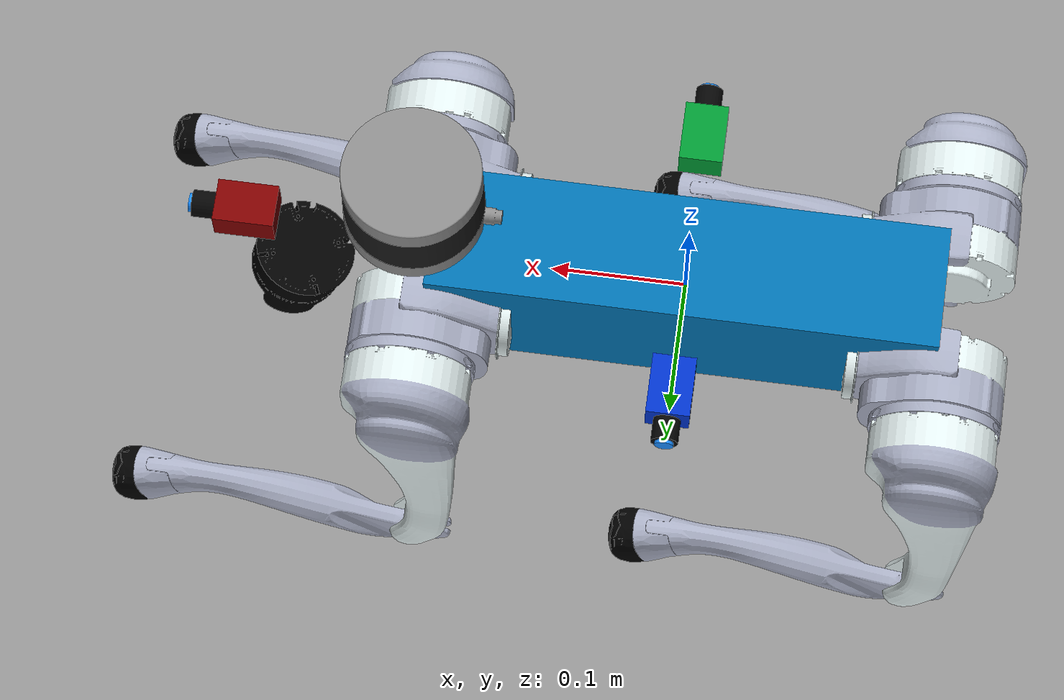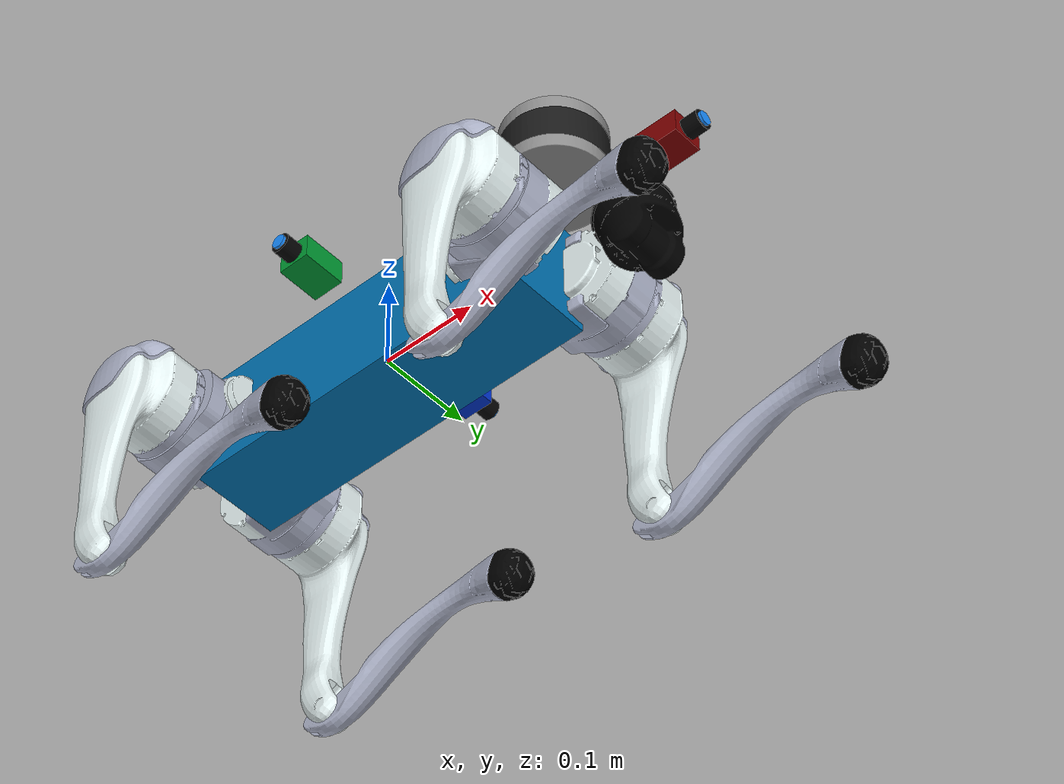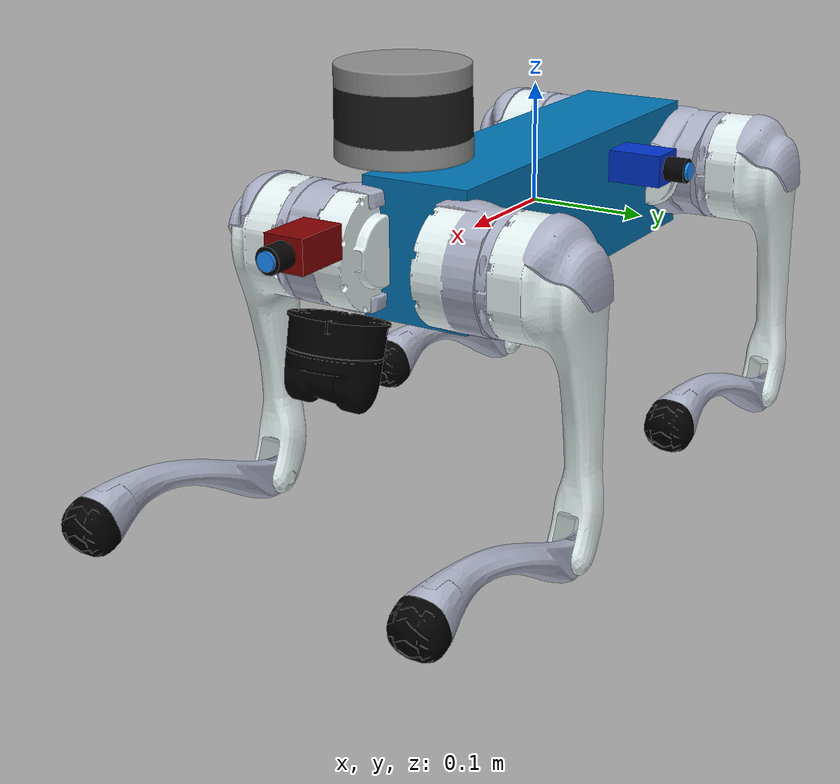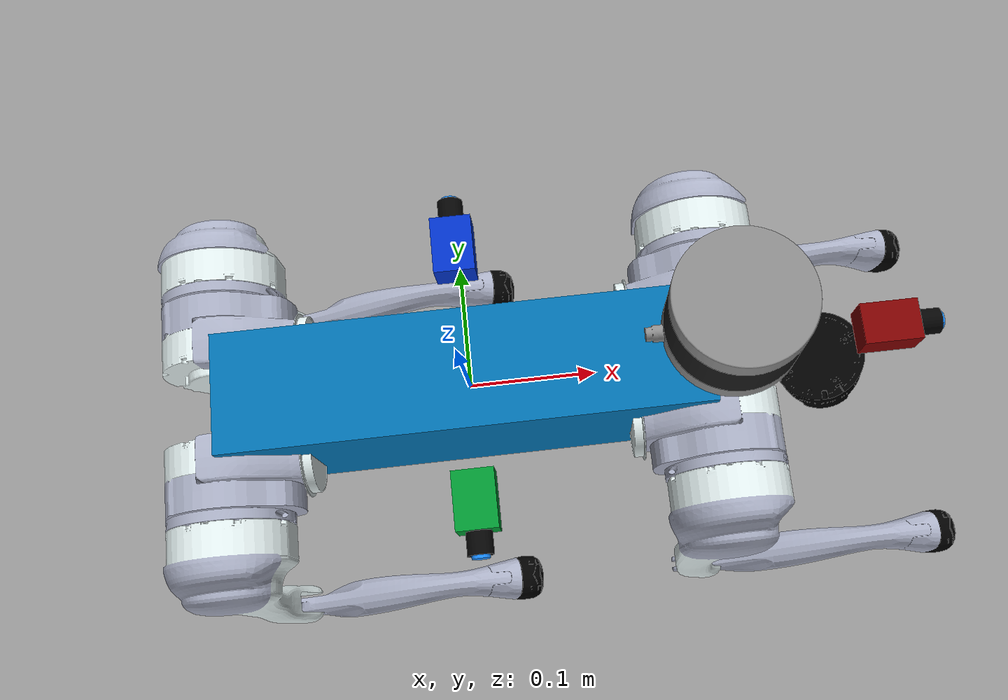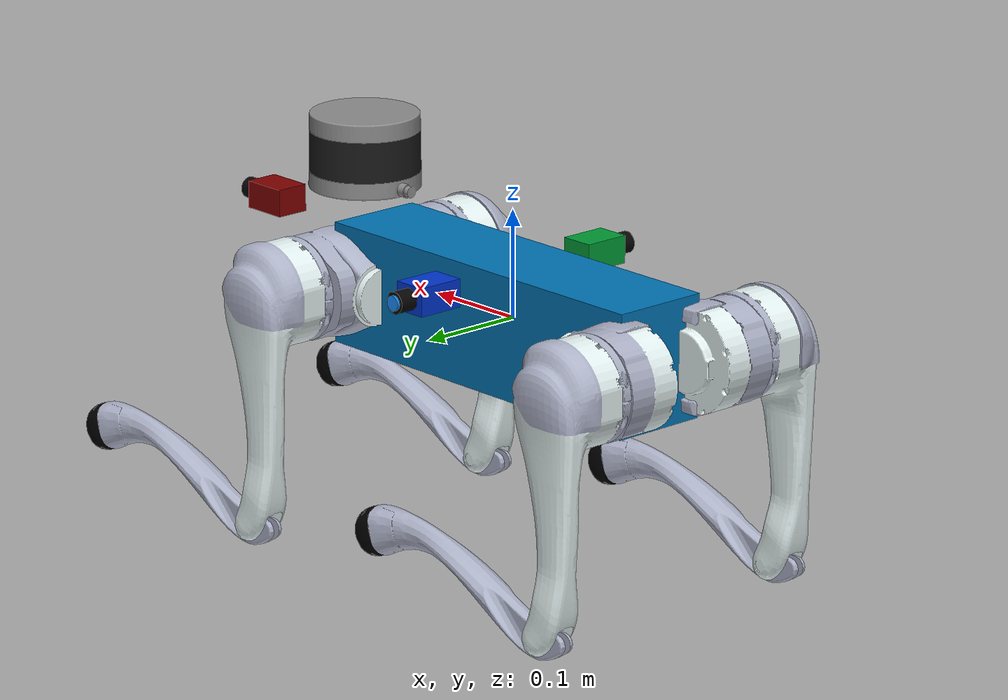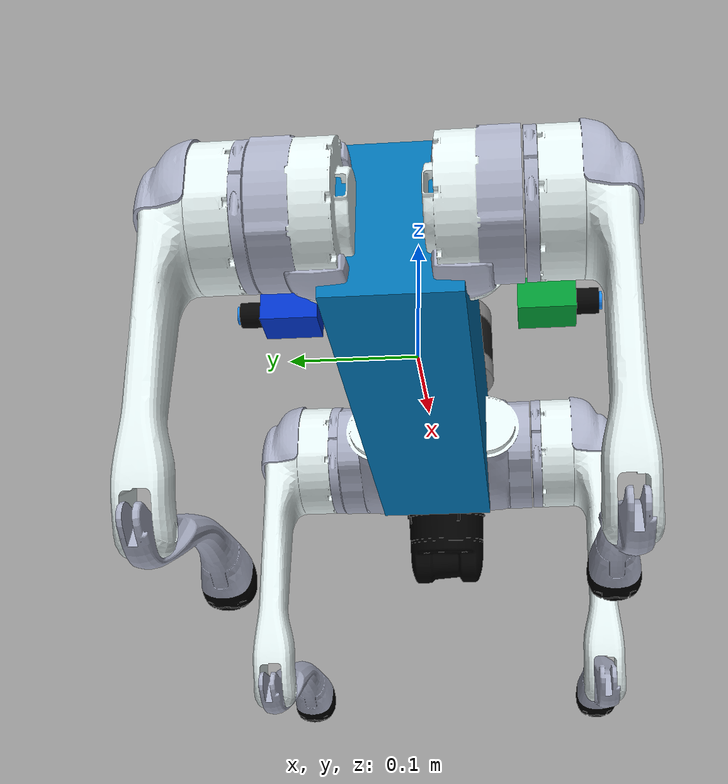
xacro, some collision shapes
<?xml version="1.0"?>

<robot name="go2"
    xmlns:xacro="http://www.ros.org/wiki/xacro">

    <!-- DEBUG=true 时会把 base_link 固定到 world，适合检查 URDF 姿态、传感器方向和碰撞体。 -->
    <xacro:arg name="DEBUG" default="false"/>

    <!-- 基础参数、材质、腿部宏、Gazebo 插件和传感器宏分文件维护，主文件只负责装配。 -->
    <xacro:include filename="$(find unitree_go2_description)/urdf/const.xacro"/>
    <xacro:include filename="$(find unitree_go2_description)/urdf/materials.xacro"/>
    <xacro:include filename="$(find unitree_go2_description)/urdf/leg.xacro"/>
    <xacro:include filename="$(find unitree_go2_description)/urdf/unitree_go2_gazebo.xacro"/>
    <xacro:include filename="$(find unitree_go2_description)/urdf/velodyne.xacro"/>
    <xacro:include filename="$(find unitree_go2_description)/urdf/lidar_4D_lidar.xacro"/>

    <!--
        旧版转子相关注释保留为提示：如果未来加入电机转子模型，需要考虑非固定关节和减速比。
        当前模型把驱动简化到关节 effort 接口，由 Gazebo/ros2_control 直接施加力矩。
    -->

    <!-- 调试模式会把机器人挂在世界坐标下，不参与自由落体；正常仿真应保持 false。 -->
    <xacro:if value="$(arg DEBUG)">
        <link name="world"/>
        <joint name="base_static_joint" type="fixed">
            <origin rpy="0 0 0" xyz="0 0 0"/>
            <parent link="world"/>
            <child link="base_link"/>
        </joint>
    </xacro:if>

    <!-- base_link 是 ROS 生态中常用的机器人根坐标系，这里用极小盒子占位。 -->
    <link name="base_link">
        <visual>
            <origin rpy="0 0 0" xyz="0 0 0"/>
            <geometry>
                <box size="0.001 0.001 0.001"/>
            </geometry>
        </visual>
    </link>

    <!-- trunk 是真实机身几何所在 link，base_link 固定连接到 trunk，方便导航栈使用 base_link。 -->
    <joint name="floating_base" type="fixed">
        <origin rpy="0 0 0" xyz="0 0 0"/>
        <parent link="base_link"/>
        <child link="trunk"/>
    </joint>

    <!-- 机身主体：视觉使用 trunk.dae，碰撞体使用简化盒子，惯量来自 const.xacro。 -->
    <link name="trunk">
        <visual>
            <origin rpy="0 0 0" xyz="0 0 0"/>
            <geometry>
                <mesh filename="file://$(find unitree_go2_description)/meshes/trunk.dae" scale="1 1 1"/>
            </geometry>
        </visual>
        <collision>
            <origin rpy="0 0 0" xyz="0 0 0"/>
            <geometry>
                <box size="${trunk_length} ${trunk_width} ${trunk_height}"/>
            </geometry>
        </collision>
        <inertial>
            <origin rpy="0 0 0" xyz="${trunk_com_x} ${trunk_com_y} ${trunk_com_z}"/>
            <mass value="${trunk_mass}"/>
            <inertia ixx="${trunk_ixx}" ixy="${trunk_ixy}" ixz="${trunk_ixz}" iyy="${trunk_iyy}" iyz="${trunk_iyz}" izz="${trunk_izz}"/>
        </inertial>
    </link>

    <!-- IMU 固定在 trunk 原点，Gazebo 传感器插件在 unitree_go2_gazebo.xacro 中绑定到 imu_link。 -->
    <joint name="imu_joint" type="fixed">
        <parent link="trunk"/>
        <child link="imu_link"/>
        <origin rpy="0 0 0" xyz="0 0 0"/>
    </joint>

    <link name="imu_link">
        <inertial>
            <mass value="0.001"/>
            <origin rpy="0 0 0" xyz="0 0 0"/>
            <inertia ixx="0.0001" ixy="0" ixz="0" iyy="0.0001" iyz="0" izz="0.0001"/>
        </inertial>
        <visual>
            <origin rpy="0 0 0" xyz="0 0 0"/>
            <geometry>
                <box size="0.001 0.001 0.001"/>
            </geometry>
        </visual>
        <collision>
            <origin rpy="0 0 0" xyz="0 0 0"/>
            <geometry>
                <box size=".001 .001 .001"/>
            </geometry>
        </collision>
    </link>

    <!-- 相机 link：极小球体仅用于 RViz 可见占位，Gazebo 中的 RGB camera 传感器绑定到对应 link。 -->
    <xacro:macro name="rgb_camera_mount" params="link_name joint_name xyz rpy color">
        <link name="${link_name}">
            <inertial>
                <mass value="0.001"/>
                <origin rpy="0 0 0" xyz="0 0 0"/>
                <inertia ixx="0.0001" ixy="0" ixz="0" iyy="0.0001" iyz="0" izz="0.0001"/>
            </inertial>
            <visual>
                <origin rpy="0 0 0" xyz="0 0 0"/>
                <geometry>
                    <box size="0.045 0.032 0.026"/>
                </geometry>
                <material name="${link_name}_body">
                    <color rgba="${color}" />
                </material>
            </visual>
            <visual>
                <origin rpy="0 1.57079632679 0" xyz="0.031 0 0"/>
                <geometry>
                    <cylinder radius="0.010" length="0.018"/>
                </geometry>
                <material name="${link_name}_lens">
                    <color rgba="0.02 0.02 0.02 1"/>
                </material>
            </visual>
            <visual>
                <origin rpy="0 1.57079632679 0" xyz="0.041 0 0"/>
                <geometry>
                    <cylinder radius="0.007" length="0.003"/>
                </geometry>
                <material name="${link_name}_glass">
                    <color rgba="0.1 0.55 1.0 1"/>
                </material>
            </visual>
            <collision>
                <origin rpy="0 0 0" xyz="0 0 0"/>
                <geometry>
                    <box size="0.055 0.034 0.028"/>
                </geometry>
            </collision>
        </link>
        <joint name="${joint_name}" type="fixed">
            <parent link="trunk"/>
            <child link="${link_name}"/>
            <origin rpy="${rpy}" xyz="${xyz}"/>
        </joint>
    </xacro:macro>

    <!-- 前/左/右三路 RGB 相机。左相机朝 +Y，右相机朝 -Y。 -->
    <xacro:rgb_camera_mount link_name="camera_link" joint_name="camera_joint" xyz="0.326 0 0.043" rpy="0 0 0" color="0.5 0 0 1"/>
    <xacro:rgb_camera_mount link_name="left_camera_link" joint_name="left_camera_joint" xyz="0.0 0.10 0.043" rpy="0 0 1.57079632679" color="0 0.2 0.8 1"/>
    <xacro:rgb_camera_mount link_name="right_camera_link" joint_name="right_camera_joint" xyz="0.0 -0.10 0.043" rpy="0 0 -1.57079632679" color="0 0.6 0.2 1"/>

    <!--
        四条腿由同一个 leg 宏生成。
        rf/lf 为前腿，rh/lh 为后腿；mirror 控制左右符号，front_hind 控制前后符号。
        name 前缀需要与 CHAMP 的 joints.yaml 和 links.yaml 保持一致。
    -->
    <xacro:leg name="rf" mirror="-1" mirror_dae= "False" front_hind="1" front_hind_dae="True" />
    <xacro:leg name="lf" mirror="1" mirror_dae="True" front_hind="1" front_hind_dae="True" />
    <xacro:leg name="rh" mirror="-1" mirror_dae="False" front_hind="-1" front_hind_dae="False" />
    <xacro:leg name="lh" mirror="1" mirror_dae="True" front_hind="-1" front_hind_dae="False" />

</robot>

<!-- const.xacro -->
<robot xmlns:xacro="http://www.ros.org/wiki/xacro">

    <!--
        Go2 模型常量。
        本文件集中定义尺寸、运动学、关节限位和惯量参数，其他 xacro 文件通过 include 复用。
        单位约定：长度为米，质量为千克，角度为弧度，惯量为 kg*m^2。
    -->

    <!-- 通用数学常量和极小质量。stick_mass 可用于占位杆件，避免 Gazebo 遇到零质量 link。 -->
    <xacro:property name="PI" value="3.1415926535897931"/>
    <xacro:property name="stick_mass" value="0.00001"/>

    <!-- 简化碰撞几何尺寸。视觉 mesh 很精细，碰撞体使用 box/cylinder/sphere 可显著提高仿真效率。 -->
    <xacro:property name="trunk_width" value="0.0935"/>
    <xacro:property name="trunk_length" value="0.3762"/>
    <xacro:property name="trunk_height" value="0.114"/>
    <xacro:property name="hip_radius" value="0.046"/>
    <xacro:property name="hip_length" value="0.04"/>
    <xacro:property name="thigh_shoulder_radius" value="0.041"/>
    <xacro:property name="thigh_shoulder_length" value="0.032"/>
    <xacro:property name="thigh_width" value="0.0245"/>
    <xacro:property name="thigh_height" value="0.034"/>
    <xacro:property name="calf_width" value="0.016"/>
    <xacro:property name="calf_height" value="0.016"/>
    <xacro:property name="foot_radius" value="0.02"/>
    <xacro:property name="stick_radius" value="0.01"/>
    <xacro:property name="stick_length" value="0.2"/>

    <!-- 运动学长度。thigh/calf 长度直接影响足端可达空间和 CHAMP 步态高度。 -->
    <xacro:property name="thigh_offset" value="0.0955"/>
    <xacro:property name="thigh_length" value="0.213"/>
    <xacro:property name="calf_length" value="0.213"/>

    <!-- 四条腿相对 trunk 中心的安装偏移。x 为前后，y 为左右。 -->
    <xacro:property name="leg_offset_x" value="0.1934"/>
    <xacro:property name="leg_offset_y" value="0.0465"/>
    <xacro:property name="hip_offset" value="0.0955"/>

    <!-- 左前腿 link 的参考偏移，其他腿通过 mirror/front_hind 参数镜像得到。 -->
    <xacro:property name="hip_offset_x" value="0.1934"/>
    <xacro:property name="hip_offset_y" value="0.0465"/>
    <xacro:property name="hip_offset_z" value="0.0"/>

    <xacro:property name="thigh_offset_x" value="0"/>
    <xacro:property name="thigh_offset_y" value="0.0955"/>
    <xacro:property name="thigh_offset_z" value="0.0"/>

    <xacro:property name="calf_offset_x" value="0.0"/>
    <xacro:property name="calf_offset_y" value="0.0"/>
    <xacro:property name="calf_offset_z" value="-0.213"/>

    <!--
        关节阻尼、摩擦、位置限位、速度限位和力矩限位。
        leg.xacro 会根据左右镜像关系翻转部分髋关节限位。
    -->
    <xacro:property name="damping" value="0.01"/>
    <xacro:property name="friction" value="0.2"/>
    <xacro:property name="hip_position_max" value="1.0472"/>
    <xacro:property name="hip_position_min" value="-1.0472"/>
    <xacro:property name="hip_velocity_max" value="30.1"/>
    <xacro:property name="hip_torque_max" value="23.7"/>
    <xacro:property name="thigh_position_max" value="3.4907"/>
    <xacro:property name="thigh_position_min" value="-1.5708"/>
    <xacro:property name="thigh_velocity_max" value="30.1"/>
    <xacro:property name="thigh_torque_max" value="23.7"/>
    <xacro:property name="calf_position_max" value="-0.83776"/>
    <xacro:property name="calf_position_min" value="-2.7227"/>
    <xacro:property name="calf_velocity_max" value="20.06"/>
    <xacro:property name="calf_torque_max" value="35.55"/>

    <!-- Gazebo/ros2_control 启动时使用的静态站立关节角，和 gait.yaml 的 nominal_height=0.225 匹配。 -->
    <xacro:property name="stand_hip_joint" value="0.0"/>
    <xacro:property name="stand_upper_leg_joint" value="1.0143535"/>
    <xacro:property name="stand_lower_leg_joint" value="-2.028707"/>

    <!-- 动力学惯量参数。COM 为各 link 局部坐标系下的质心，惯量矩阵用于 Gazebo 物理仿真。 -->
    <!-- trunk：机身主体，质量最大，对整体姿态稳定性影响最明显。 -->
    <xacro:property name="trunk_mass" value="6.921"/>
    <xacro:property name="trunk_com_x" value="0.021112"/>
    <xacro:property name="trunk_com_y" value="0.00"/>
    <xacro:property name="trunk_com_z" value="-0.005366"/>
    <xacro:property name="trunk_ixx" value="0.02448"/>
    <xacro:property name="trunk_ixy" value="0.00012166"/>
    <xacro:property name="trunk_ixz" value="0.0014849"/>
    <xacro:property name="trunk_iyy" value="0.098077"/>
    <xacro:property name="trunk_iyz" value="-3.12E-05"/>
    <xacro:property name="trunk_izz" value="0.107"/>

    <!-- hip：髋部横摆/侧摆机构，其他腿通过符号翻转复用左前腿惯量。 -->
    <xacro:property name="hip_mass" value="0.678"/>
    <xacro:property name="hip_com_x" value="-0.0054"/>
    <xacro:property name="hip_com_y" value="0.00194"/>
    <xacro:property name="hip_com_z" value="-0.000105"/>
    <xacro:property name="hip_ixx" value="0.00048"/>
    <xacro:property name="hip_ixy" value="-3.01E-06"/>
    <xacro:property name="hip_ixz" value="1.11E-06"/>
    <xacro:property name="hip_iyy" value="0.000884"/>
    <xacro:property name="hip_iyz" value="-1.42E-06"/>
    <xacro:property name="hip_izz" value="0.000596"/>

    <!-- thigh：上腿 link，质心和惯量会按左右镜像修正 y 方向符号。 -->
    <xacro:property name="thigh_mass" value="1.152"/>
    <xacro:property name="thigh_com_x" value="-0.00374"/>
    <xacro:property name="thigh_com_y" value="-0.0223"/>
    <xacro:property name="thigh_com_z" value="-0.0327"/>
    <xacro:property name="thigh_ixx" value="0.00584"/>
    <xacro:property name="thigh_ixy" value="8.72E-05"/>
    <xacro:property name="thigh_ixz" value="-0.000289"/>
    <xacro:property name="thigh_iyy" value="0.0058"/>
    <xacro:property name="thigh_iyz" value="0.000808"/>
    <xacro:property name="thigh_izz" value="0.00103"/>

    <!-- calf：小腿 link，质量较轻但长度较长，惯量参数会影响摆腿响应。 -->
    <xacro:property name="calf_mass" value="0.154"/>
    <xacro:property name="calf_com_x" value="0.00548"/>
    <xacro:property name="calf_com_y" value="-0.000975"/>
    <xacro:property name="calf_com_z" value="-0.115"/>
    <xacro:property name="calf_ixx" value="0.00108"/>
    <xacro:property name="calf_ixy" value="3.4E-07"/>
    <xacro:property name="calf_ixz" value="1.72E-05"/>
    <xacro:property name="calf_iyy" value="0.0011"/>
    <xacro:property name="calf_iyz" value="8.28E-06"/>
    <xacro:property name="calf_izz" value="3.29E-05"/>

    <!-- foot：足端简化为球体，惯量在 leg.xacro 中按实心球公式计算。 -->
    <xacro:property name="foot_mass" value="0.06"/>

</robot>

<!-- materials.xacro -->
<robot>

    <!--
        统一材质表。
        这些材质可以被各个 link 的 visual 引用，避免在多个 xacro 中重复写 RGBA。
        rgba 的第四个值是透明度，1.0 为不透明，0.0 为完全透明。
    -->
    <material name="black">
        <color rgba="0.0 0.0 0.0 1.0"/>
    </material>

    <!-- 基础调试色：用于临时给 link 或传感器外壳着色。 -->
    <material name="blue">
        <color rgba="0.0 0.0 0.8 1.0"/>
    </material>

    <material name="green">
        <color rgba="0.0 0.8 0.0 1.0"/>
    </material>

    <!-- grey 当前 alpha 为 0，视觉上透明，适合隐藏占位几何。 -->
    <material name="grey">
        <color rgba="0.2 0.2 0.2 0.0"/>
    </material>

    <!-- 下列颜色使用 0 到 255 的常见 RGB 值换算到 URDF 所需的 0 到 1。 -->
    <material name="silver">
        <color rgba="${233/255} ${233/255} ${216/255} 1.0"/>
    </material>

    <material name="orange">
        <color rgba="${255/255} ${108/255} ${10/255} 1.0"/>
    </material>

    <material name="brown">
        <color rgba="${222/255} ${207/255} ${195/255} 1.0"/>
    </material>

    <material name="red">
        <color rgba="0.8 0.0 0.0 1.0"/>
    </material>

    <material name="white">
        <color rgba="1.0 1.0 1.0 1.0"/>
    </material>

</robot>

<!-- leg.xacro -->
<robot xmlns:xacro="http://www.ros.org/wiki/xacro">

    <xacro:macro name="leg" params="name mirror mirror_dae front_hind front_hind_dae">

        <!-- 髋关节连接 trunk 和 hip link，origin 根据前/后、左/右四种组合放置。 -->
        <joint name="${name}_hip_joint" type="revolute">
            <!-- 右前腿：x 为前向正，y 为右侧负。 -->
            <xacro:if value="${(mirror_dae == False) and (front_hind_dae == True)}">
                <origin rpy="0 0 0" xyz="${leg_offset_x} ${-leg_offset_y} 0"/>
            </xacro:if>
            <!-- 左前腿：x 为前向正，y 为左侧正。 -->
            <xacro:if value="${(mirror_dae == True) and (front_hind_dae == True)}">
                <origin rpy="0 0 0" xyz="${leg_offset_x} ${leg_offset_y} 0"/>
            </xacro:if>
            <!-- 右后腿：x 为后向负，y 为右侧负。 -->
            <xacro:if value="${(mirror_dae == False) and (front_hind_dae == False)}">
                <origin rpy="0 0 0" xyz="${-leg_offset_x} ${-leg_offset_y} 0"/>
            </xacro:if>
            <!-- 左后腿：x 为后向负，y 为左侧正。 -->
            <xacro:if value="${(mirror_dae == True) and (front_hind_dae == False)}">
                <origin rpy="0 0 0" xyz="${-leg_offset_x} ${leg_offset_y} 0"/>
            </xacro:if>
            <parent link="trunk"/>
            <child link="${name}_hip_link"/>
            <!-- 髋关节绕 x 轴转动，控制腿向外/向内摆动。 -->
            <axis xyz="1 0 0"/>
            <dynamics damping="${damping}" friction="${friction}"/>
            <!-- 左右腿坐标镜像后，髋关节正负限位也要翻转，避免可动范围方向相反。 -->
            <xacro:if value="${(mirror_dae == True)}">
                <limit effort="${hip_torque_max}" velocity="${hip_velocity_max}" lower="${hip_position_min}" upper="${hip_position_max}"/>
            </xacro:if>
            <xacro:if value="${(mirror_dae == False)}">
                <limit effort="${hip_torque_max}" velocity="${hip_velocity_max}" lower="${-hip_position_max}" upper="${-hip_position_min}"/>
            </xacro:if>
        </joint>

        <!-- hip link：视觉使用真实 mesh，碰撞使用圆柱体，惯量使用 const.xacro 中的实测/拟合参数。 -->
        <link name="${name}_hip_link">
            <visual>
                <!-- 同一个 hip mesh 通过 RPY 旋转复用到四条腿。 -->
                <xacro:if value="${(mirror_dae == True) and (front_hind_dae == True)}">
                    <origin rpy="0 0 0" xyz="0 0 0"/>
                </xacro:if>
                <xacro:if value="${(mirror_dae == False) and (front_hind_dae == True)}">
                    <origin rpy="${PI} 0 0" xyz="0 0 0"/>
                </xacro:if>
                <xacro:if value="${(mirror_dae == True) and (front_hind_dae == False)}">
                    <origin rpy="0 ${PI} 0" xyz="0 0 0"/>
                </xacro:if>
                <xacro:if value="${(mirror_dae == False) and (front_hind_dae == False)}">
                    <origin rpy="${PI} ${PI} 0" xyz="0 0 0"/>
                </xacro:if>
                <geometry>
                    <mesh filename="file://$(find unitree_go2_description)/meshes/hip.dae" scale="1 1 1"/>
                </geometry>
            </visual>
            <collision>
                <!-- 圆柱碰撞体沿髋部轴向放置，比 mesh 碰撞更稳定。 -->
                <origin rpy="${PI/2.0} 0 0" xyz="0 ${hip_offset*mirror} 0"/>
                <geometry>
                    <cylinder length="${hip_length}" radius="${hip_radius}"/>
                </geometry>
            </collision>
            <inertial>
                <origin rpy="0 0 0" xyz="${hip_com_x*front_hind} ${hip_com_y*mirror} ${hip_com_z}"/>
                <mass value="${hip_mass}"/>
                <inertia
                    ixx="${hip_ixx}" ixy="${hip_ixy*mirror*front_hind}" ixz="${hip_ixz*front_hind}"
                    iyy="${hip_iyy}" iyz="${hip_iyz*mirror}"
                    izz="${hip_izz}"/>
            </inertial>
        </link>

        <!-- 上腿关节连接 hip link 和 upper_leg link，绕局部 y 轴完成前后摆动。 -->
        <joint name="${name}_upper_leg_joint" type="revolute">
            <origin rpy="0 0 0" xyz="0 ${thigh_offset*mirror} 0"/>
            <parent link="${name}_hip_link"/>
            <child link="${name}_upper_leg_link"/>
            <axis xyz="0 1 0"/>
            <dynamics damping="${damping}" friction="${friction}"/>
            <limit effort="${thigh_torque_max}" velocity="${thigh_velocity_max}" lower="${thigh_position_min}" upper="${thigh_position_max}"/>
        </joint>

        <!-- upper_leg link：左右两侧使用不同 thigh mesh，碰撞体简化成长方体。 -->
        <link name="${name}_upper_leg_link">
            <visual>
                <origin rpy="0 0 0" xyz="0 0 0"/>
                <geometry>
                    <xacro:if value="${mirror_dae == True}">
                        <mesh filename="file://$(find unitree_go2_description)/meshes/thigh.dae" scale="1 1 1"/>
                    </xacro:if>
                    <xacro:if value="${mirror_dae == False}">
                        <mesh filename="file://$(find unitree_go2_description)/meshes/thigh_mirror.dae" scale="1 1 1"/>
                    </xacro:if>
                </geometry>
            </visual>
            <collision>
                <!-- box 的长边沿上腿方向，中心放在 thigh_length 的一半处。 -->
                <origin rpy="0 ${PI/2.0} 0" xyz="0 0 ${-thigh_length/2.0}"/>
                <geometry>
                    <box size="${thigh_length} ${thigh_width} ${thigh_height}"/>
                </geometry>
            </collision>
            <inertial>
                <origin rpy="0 0 0" xyz="${thigh_com_x} ${thigh_com_y*mirror} ${thigh_com_z}"/>
                <mass value="${thigh_mass}"/>
                <inertia
                    ixx="${thigh_ixx}" ixy="${thigh_ixy*mirror}" ixz="${thigh_ixz}"
                    iyy="${thigh_iyy}" iyz="${thigh_iyz*mirror}"
                    izz="${thigh_izz}"/>
            </inertial>
        </link>

        <!-- 小腿关节位于上腿末端，绕局部 y 轴弯曲。 -->
        <joint name="${name}_lower_leg_joint" type="revolute">
            <origin rpy="0 0 0" xyz="0 0 ${-thigh_length}"/>
            <parent link="${name}_upper_leg_link"/>
            <child link="${name}_lower_leg_link"/>
            <axis xyz="0 1 0"/>
            <dynamics damping="${damping}" friction="${friction}"/>
            <limit effort="${calf_torque_max}" velocity="${calf_velocity_max}" lower="${calf_position_min}" upper="${calf_position_max}"/>
        </joint>

        <!-- lower_leg link：视觉为 calf mesh，碰撞体为长方体，计算量小且不易卡住地面。 -->
        <link name="${name}_lower_leg_link">
            <visual>
                <origin rpy="0 0 0" xyz="0 0 0"/>
                <geometry>
                    <mesh filename="file://$(find unitree_go2_description)/meshes/calf.dae" scale="1 1 1"/>
                </geometry>
            </visual>
            <collision>
                <!-- 小腿碰撞盒中心位于 calf_length 的一半处。 -->
                <origin rpy="0 ${PI/2.0} 0" xyz="0 0 ${-calf_length/2.0}"/>
                <geometry>
                    <box size="${calf_length} ${calf_width} ${calf_height}"/>
                </geometry>
            </collision>
            <inertial>
                <origin rpy="0 0 0" xyz="${calf_com_x} ${calf_com_y} ${calf_com_z}"/>
                <mass value="${calf_mass}"/>
                <inertia
                    ixx="${calf_ixx}" ixy="${calf_ixy}" ixz="${calf_ixz}"
                    iyy="${calf_iyy}" iyz="${calf_iyz}"
                    izz="${calf_izz}"/>
            </inertial>
        </link>

        <!-- 足端固定在小腿末端，CHAMP 使用该 link 作为足端接触/运动学参考。 -->
        <joint name="${name}_foot_joint" type="fixed">
            <origin rpy="0 0 0" xyz="0 0 ${-(calf_length)}"/>
            <parent link="${name}_lower_leg_link"/>
            <child link="${name}_foot_link"/>
        </joint>

        <!-- 足端简化为球体，视觉球略小于碰撞球，避免渲染时看起来过大。 -->
        <link name="${name}_foot_link">
            <visual>
                <origin rpy="0 0 0" xyz="0 0 0"/>
                <geometry>
                    <sphere radius="${foot_radius-0.01}"/>
                </geometry>
            </visual>
            <collision>
                <origin rpy="0 0 0" xyz="0 0 0"/>
                <geometry>
                    <sphere radius="${foot_radius}"/>
                </geometry>
            </collision>
            <inertial>
                <mass value="${foot_mass}"/>
                <!-- 实心球惯量公式：I = 2/5*m*r^2。 -->
                <inertia
                    ixx="${(2*foot_mass)/5.0*(foot_radius*foot_radius)}" ixy="0.0" ixz="0.0"
                    iyy="${(2*foot_mass)/5.0*(foot_radius*foot_radius)}" iyz="0.0"
                    izz="${(2*foot_mass)/5.0*(foot_radius*foot_radius)}"/>
            </inertial>
        </link>

        <!--
            ros2_control 硬件接口声明。
            GazeboSimSystem 由 gz_ros2_control 插件实现，三个主动关节暴露 effort 命令接口，
            并反馈 position/velocity 给 joint_trajectory_controller。
        -->
        <ros2_control name="${name}" type="system">
            <hardware>
                <plugin>gz_ros2_control/GazeboSimSystem</plugin>
            </hardware>
            <joint name="${name}_hip_joint">
                <command_interface name="effort"/>
                <state_interface name="position">
                    <param name="initial_value">${stand_hip_joint}</param>
                </state_interface>
                <state_interface name="velocity"/>
            </joint>

            <joint name="${name}_upper_leg_joint">
                <command_interface name="effort"/>
                <state_interface name="position">
                    <param name="initial_value">${stand_upper_leg_joint}</param>
                </state_interface>
                <state_interface name="velocity"/>
            </joint>

            <joint name="${name}_lower_leg_joint">
                <command_interface name="effort"/>
                <state_interface name="position">
                    <param name="initial_value">${stand_lower_leg_joint}</param>
                </state_interface>
                <state_interface name="velocity"/>
            </joint>
        </ros2_control>

    </xacro:macro>
</robot>

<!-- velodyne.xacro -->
<robot xmlns:xacro="http://www.ros.org/wiki/xacro">
    <!--
        Velodyne VLP-16 传感器模型。
        该文件定义安装支架、扫描 link 和 Gazebo gpu_lidar 传感器，输出话题为 velodyne_points。
    -->

    <!-- 雷达底座固定在 base_link 前上方。xyz 为相对 base_link 的安装位移。 -->
    <joint name="velodyne_base_mount_joint" type="fixed">
        <origin rpy="0 0 0" xyz="0.2 0 0.08"/>
        <parent link="base_link"/>
        <child link="velodyne_base_link"/>
    </joint>

    <!-- VLP16 底座：使用两个视觉 mesh 还原外观，碰撞体用圆柱近似。 -->
    <link name="velodyne_base_link">
        <inertial>
            <mass value="0.83"/>
            <origin xyz="0 0 0.03585"/>
            <inertia ixx="0.000908059425" ixy="0" ixz="0" iyy="0.000908059425" iyz="0" izz="0.0011049624"/>
        </inertial>
        <visual>
            <geometry>
                <mesh filename="file://$(find unitree_go2_description)/meshes/VLP16_base_1.dae"/>
            </geometry>
        </visual>
        <visual>
            <geometry>
                <mesh filename="file://$(find unitree_go2_description)/meshes/VLP16_base_2.dae"/>
            </geometry>
        </visual>
        <collision>
            <origin rpy="0 0 0" xyz="0 0 0.03585"/>
            <geometry>
                <cylinder length="0.0717" radius="0.0516"/>
            </geometry>
        </collision>
    </link>

    <!-- 扫描 link 位于底座上方，Gazebo lidar sensor 绑定到 velodyne。 -->
    <joint name="velodyne_base_scan_joint" type="fixed">
        <origin rpy="0 0 0" xyz="0 0 0.0377"/>
        <parent link="velodyne_base_link"/>
        <child link="velodyne"/>
    </joint>

    <!-- 扫描头视觉 mesh 单独放置，惯量极小，主要用于提供 frame 和外观。 -->
    <link name="velodyne">
        <inertial>
            <mass value="0.01"/>
            <origin xyz="0 0 0"/>
            <inertia ixx="1e-7" ixy="0" ixz="0" iyy="1e-7" iyz="0" izz="1e-7"/>
        </inertial>
        <visual>
            <origin xyz="0 0 -0.0377"/>
            <geometry>
                <mesh filename="file://$(find unitree_go2_description)/meshes/VLP16_scan.dae"/>
            </geometry>
        </visual>
    </link>

    <!-- Gazebo Sim 的 GPU 激光雷达。ros_gz_bridge 会把该话题转换成 PointCloud2。 -->
    <gazebo reference="velodyne">
        <sensor name="velodyne-VLP16" type="gpu_lidar">
            <topic>velodyne_points</topic>
            <update_rate>10</update_rate>
            <gz_frame_id>velodyne</gz_frame_id>
            <lidar>
                <scan>
                    <!-- 水平 360 度扫描，samples 控制每圈点数。 -->
                    <horizontal>
                        <samples>440</samples>
                        <resolution>1</resolution>
                        <min_angle>-3.14159</min_angle>
                        <max_angle>3.14159</max_angle>
                    </horizontal>
                    <!-- 垂直 16 线，对应 VLP-16 的线束数量和约 30 度视场。 -->
                    <vertical>
                        <samples>16</samples>
                        <resolution>1</resolution>
                        <min_angle>-0.261799</min_angle>
                        <max_angle>0.261799</max_angle>
                    </vertical>
                </scan>
                <!-- 有效测距范围和距离分辨率。 -->
                <range>
                    <min>0.5</min>
                    <max>131.0</max>
                    <resolution>0.001</resolution>
                </range>
                <!-- 点云距离噪声，模拟真实雷达测距误差。 -->
                <noise>
                    <type>gaussian</type>
                    <mean>0.0</mean>
                    <stddev>0.008</stddev>
                </noise>
                <frame_id>velodyne</frame_id>
            </lidar>
            <visualize>true</visualize>

            <!-- always_on 让传感器随仿真启动持续发布，不依赖订阅者激活。 -->
            <always_on>1</always_on>
        </sensor>
    </gazebo>
</robot>

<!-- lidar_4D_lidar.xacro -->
<robot xmlns:xacro="http://www.ros.org/wiki/xacro">

    <!--
        Unitree L1 4D LiDAR 模型。
        该文件定义雷达外观、安装位姿和 Gazebo gpu_lidar 参数，输出话题为 unitree_lidar。
    -->

    <!-- L1 雷达主体 link：视觉和碰撞都引用原厂/导出的 L1_4D_Lidar.dae mesh。 -->
    <link name="lidar_l1_link">
        <inertial>
            <!-- 传感器惯量采用近似值，足够支撑 Gazebo 稳定仿真。 -->
            <mass value="0.5"/>
            <origin rpy="0 0 0" xyz="0 0 0"/>
            <inertia ixx="0.01" ixy="0" ixz="0" iyy="0.01" iyz="0" izz="0.01"/>
        </inertial>
        <visual>
            <origin rpy="0 0 0" xyz="0 0 0"/>
            <geometry>
                <mesh filename="file://$(find unitree_go2_description)/meshes/L1_4D_Lidar.dae" scale="1 1 1"/>
            </geometry>
            <material name="black">
                <color rgba="0.0 0.0 0.0 1.0"/>
            </material>
        </visual>
        <collision>
            <origin rpy="0 0 0" xyz="0 0 0"/>
            <geometry>
                <mesh filename="file://$(find unitree_go2_description)/meshes/L1_4D_Lidar.dae" scale="1 1 1"/>
            </geometry>
            <material name="black">
                <color rgba="0.0 0.0 0.0 1.0"/>
            </material>
        </collision>
    </link>

    <!-- L1 固定安装在 base_link 前方，RPY 用于校准 mesh 坐标系和实际扫描方向。 -->
    <joint name="lidar_l1_joint" type="fixed">
        <parent link="base_link"/>
        <child link="lidar_l1_link"/>
        <origin rpy="2.879 0.0 1.5705" xyz="0.25 -0.038 -0.03"/>
    </joint>

    <!-- Gazebo GPU lidar：生成稠密 3D 点云，桥接后对应 /unitree_lidar/points。 -->
    <gazebo reference="lidar_l1_link">
        <sensor name="lidar_l1" type="gpu_lidar">
            <topic>unitree_lidar</topic>
            <update_rate>10</update_rate>
            <lidar>
                <scan>
                    <!-- 水平扫描覆盖 360 度，samples 越大点云越密集。 -->
                    <horizontal>
                        <samples>600</samples>
                        <resolution>1</resolution>
                        <min_angle>-3.14159</min_angle>
                        <max_angle>3.14159</max_angle>
                    </horizontal>
                    <!-- 垂直扫描约 90 度，30 线用于近似 4D LiDAR 的立体视场。 -->
                    <vertical>
                        <samples>30</samples>
                        <resolution>1</resolution>
                        <min_angle>-0.785398</min_angle>
                        <max_angle>0.785398</max_angle>
                    </vertical>
                </scan>
                <!-- 最小/最大测距范围和距离分辨率。 -->
                <range>
                    <min>0.8</min>
                    <max>30.0</max>
                    <resolution>0.001</resolution>
                </range>
                <!-- 高斯噪声用于模拟真实点云抖动。 -->
                <noise>
                    <type>gaussian</type>
                    <mean>0.0</mean>
                    <stddev>0.008</stddev>
                </noise>
            </lidar>
            <!-- 默认不在 Gazebo 中渲染扫描线，减少图形负担；RViz 可显示桥接后的点云。 -->
            <visualize>false</visualize>
            <gz_frame_id>lidar_l1_link</gz_frame_id>
            <!-- 传感器随仿真持续运行。 -->
            <always_on>1</always_on>
        </sensor>
    </gazebo>
</robot>
